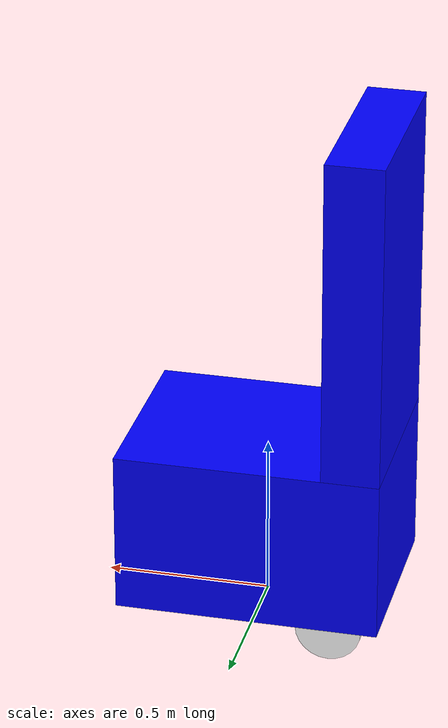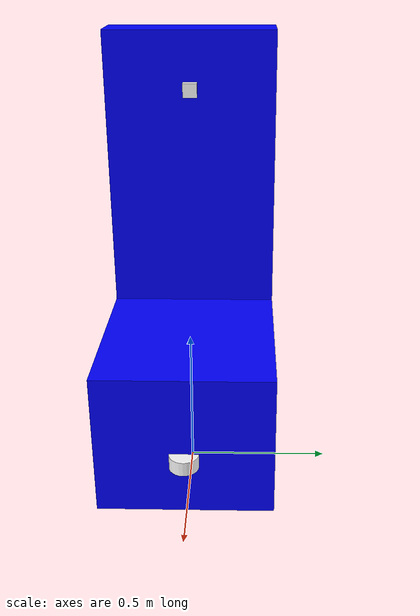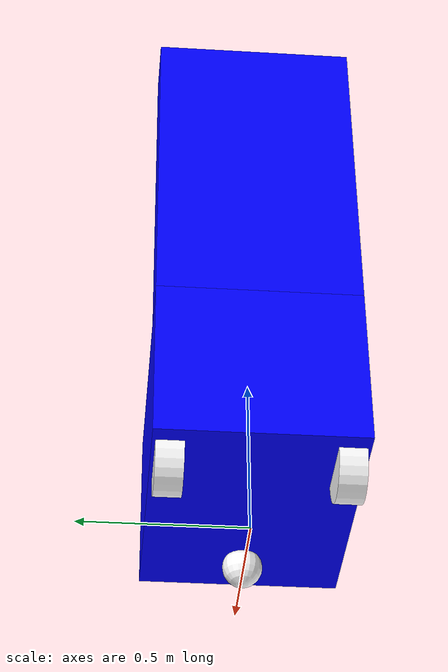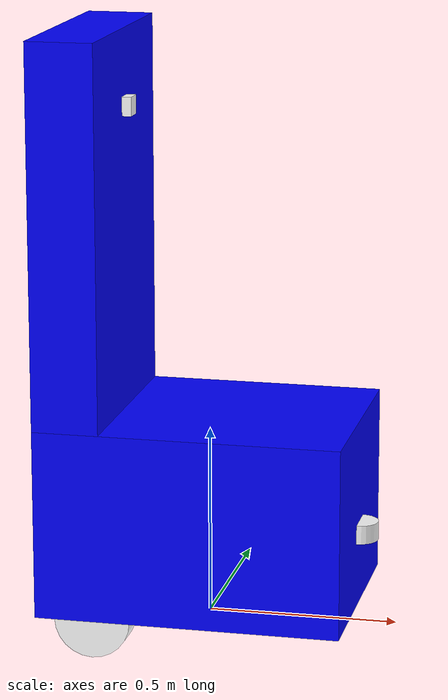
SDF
<?xml version="1.0"?>

<sdf version="1.9">

    <!-- nomeer_robot model -->
    <model name='nomeer_robot' canonical_link='base_link'>

        <static>false</static>
        <self_collide>false</self_collide>

        <!-- links-->
        <!-- base_footprint -->
        <link name="base_footprint" />

        <!-- base_link -->
        <link name="base_link">

            <pose relative_to='__model__'>0 0 0.3 0 0 0</pose>

            <inertial>
                <mass>8.0</mass>
                <inertia>
                    <ixx>0.426667</ixx>
                    <ixy>0</ixy>
                    <ixz>0</ixz>
                    <iyy>0.24</iyy>
                    <iyz>0</iyz>
                    <izz>0.666667</izz>
                </inertia>
            </inertial>

            <visual
                name='visual'>
                <geometry>
                    <box>
                        <size>0.8 0.6 0.5</size>
                    </box>
                </geometry>
                <material> <!-- blue color -->
                    <ambient>0.0 0.0 1.0 1</ambient>
                    <diffuse>0.0 0.0 1.0 1</diffuse>
                    <specular>0.0 0.0 1.0 1</specular>
                </material>
            </visual>

            <collision
                name='collision'>
                <geometry>
                    <box>
                        <size>0.8 0.6 0.5</size>
                    </box>
                </geometry>
            </collision>

        </link>

        <!-- body_link-->
        <link name="body_link">

            <pose relative_to="base_link">-0.3125 0 0.75 0 1.5708 0</pose>

            <inertial>
                <mass>2.0</mass>
                <inertia>
                    <ixx>0.166667</ixx>
                    <ixy>0</ixy>
                    <ixz>0</ixz>
                    <iyy>0.06</iyy>
                    <iyz>0</iyz>
                    <izz>0.226667</izz>
                </inertia>
            </inertial>

            <visual name='visual'>
                <geometry>
                    <box>
                        <size>1.0 0.6 0.175</size>
                    </box>
                </geometry>
                <material> <!-- blue color -->
                    <ambient>0.0 0.0 1.0 1</ambient>
                    <diffuse>0.0 0.0 1.0 1</diffuse>
                    <specular>0.0 0.0 1.0 1</specular>
                </material>
            </visual>

            <collision name='collision'>
                <geometry>
                    <box>
                        <size>1.0 0.6 0.175</size>
                    </box>
                </geometry>
            </collision>

        </link>

        <!-- right_wheel arbitrary frame -->
        <frame name="right_wheel_frame" attached_to='base_link'>
            <pose>-0.25 0.25 -0.25 1.5707 0 0</pose>
        </frame>
        <!-- right_wheel_link-->
        <link name="right_wheel_link">

            <pose relative_to="right_wheel_frame" />

            <inertial>
                <mass>0.4</mass>
                <inertia>
                    <ixx>0.001213</ixx>
                    <ixy>0</ixy>
                    <ixz>0</ixz>
                    <iyy>0.001213</iyy>
                    <iyz>0</iyz>
                    <izz>0.002</izz>
                </inertia>
            </inertial>

            <visual name='visual'>
                <geometry>
                    <cylinder>
                        <radius>0.1</radius>
                        <length>0.08</length>
                    </cylinder>
                </geometry>
                <material> <!-- white color -->
                    <ambient>1.0 1.0 1.0 1.0</ambient>
                    <diffuse>1.0 1.0 1.0 1.0</diffuse>
                    <specular>1.0 1.0 1.0 1.0</specular>
                </material>
            </visual>

            <collision
                name='collision'>
                <geometry>
                    <cylinder>
                        <radius>0.1</radius>
                        <length>0.08</length>
                    </cylinder>
                </geometry>
            </collision>

        </link>

        <!-- left_wheel arbitrary frame -->
        <frame name="left_wheel_frame" attached_to='base_link'>
            <pose>-0.25 -0.25 -0.25 1.5707 0 0</pose>
        </frame>
        <!-- left_wheel_link-->
        <link name="left_wheel_link">

            <pose relative_to="left_wheel_frame" />

            <inertial>
                <mass>0.4</mass>
                <inertia>
                    <ixx>0.001213</ixx>
                    <ixy>0</ixy>
                    <ixz>0</ixz>
                    <iyy>0.001213</iyy>
                    <iyz>0</iyz>
                    <izz>0.002</izz>
                </inertia>
            </inertial>

            <visual name='visual'>
                <geometry>
                    <cylinder>
                        <radius>0.1</radius>
                        <length>0.08</length>
                    </cylinder>
                </geometry>
                <material> <!-- white color -->
                    <ambient>1.0 1.0 1.0 1.0</ambient>
                    <diffuse>1.0 1.0 1.0 1.0</diffuse>
                    <specular>1.0 1.0 1.0 1.0</specular>
                </material>
            </visual>

            <collision name='collision'>
                <geometry>
                    <cylinder>
                        <radius>0.1</radius>
                        <length>0.08</length>
                    </cylinder>
                </geometry>
            </collision>

        </link>

        <!-- caster arbitrary frame -->
        <frame name="caster_frame" attached_to='base_link'>
            <pose>0.25 0 -0.28 0 0 0</pose>
        </frame>
        <!-- caster_link-->
        <link name="caster_link">

            <pose relative_to="caster_frame" />

            <inertial>
                <mass>0.3</mass>
                <inertia>
                    <ixx>0.0012</ixx>
                    <ixy>0</ixy>
                    <ixz>0</ixz>
                    <iyy>0.0012</iyy>
                    <iyz>0</iyz>
                    <izz>0.0012</izz>
                </inertia>
            </inertial>

            <visual name='visual'>
                <geometry>
                    <sphere>
                        <radius>0.06</radius>
                    </sphere>
                </geometry>
                <material> <!-- white color -->
                    <ambient>1.0 1.0 1.0 1.0</ambient>
                    <diffuse>1.0 1.0 1.0 1.0</diffuse>
                    <specular>1.0 1.0 1.0 1.0</specular>
                </material>
            </visual>

            <collision name='collision'>
                <geometry>
                    <sphere>
                        <radius>0.06</radius>
                    </sphere>
                </geometry>
            </collision>

        </link>

        <!-- camera_link-->
        <link name="camera_link">

            <pose relative_to="base_link">-0.225 0 1.05 0 0 0</pose>

            <visual name='visual'>
                <geometry>
                    <box>
                        <size>0.05 0.05 0.05</size>
                    </box>
                </geometry>
                <material> <!-- white color -->
                    <ambient>1.0 1.0 1.0 1.0</ambient>
                    <diffuse>1.0 1.0 1.0 1.0</diffuse>
                    <specular>1.0 1.0 1.0 1.0</specular>
                </material>
            </visual>

            <collision name='collision'>
                <geometry>
                    <box>
                        <size>0.05 0.05 0.05</size>
                    </box>
                </geometry>
            </collision>

            <sensor name="camera" type="camera">
                <pose relative_to='camera_link'>0 0 0 0 0 0</pose>
                <topic>camera</topic>
                <camera>
                    <horizontal_fov>1.047</horizontal_fov>
                    <image>
                        <width>320</width>
                        <height>240</height>
                    </image>
                    <clip>
                        <near>0.1</near>
                        <far>100</far>
                    </clip>
                </camera>
                <always_on>1</always_on>
                <update_rate>10</update_rate>
                <visualize>true</visualize>
            </sensor>

        </link>

        <!-- lidar_link-->
        <link name="lidar_link">

            <pose relative_to="base_link">0.4 0 -0.05 0 0 0</pose>

            <visual name='visual'>
                <geometry>
                    <cylinder>
                        <radius>0.05</radius>
                        <length>0.05</length>
                    </cylinder>
                </geometry>
                <material> <!-- white color -->
                    <ambient>1.0 1.0 1.0 1.0</ambient>
                    <diffuse>1.0 1.0 1.0 1.0</diffuse>
                    <specular>1.0 1.0 1.0 1.0</specular>
                </material>
            </visual>

            <collision name='collision'>
                <geometry>
                    <cylinder>
                        <radius>0.05</radius>
                        <length>0.05</length>
                    </cylinder>
                </geometry>
            </collision>

            <sensor name='gpu_lidar' type='gpu_lidar'>
                <pose relative_to='lidar_link'>0 0 0 0 0 0</pose>
                <topic>lidar</topic>
                <update_rate>10</update_rate>
                <ray>
                    <scan>
                        <horizontal>
                            <samples>400</samples>
                            <resolution>1</resolution>
                            <min_angle>-1.5707</min_angle>
                            <max_angle>1.5707</max_angle>
                        </horizontal>
                        <vertical>
                            <samples>1</samples>
                            <resolution>0.01</resolution>
                            <min_angle>0</min_angle>
                            <max_angle>0</max_angle>
                        </vertical>
                    </scan>
                    <range>
                        <min>0.15</min>
                        <max>25.0</max>
                        <resolution>0.01</resolution>
                    </range>
                </ray>
                <gz_frame_id>lidar_link</gz_frame_id>
                <always_on>1</always_on>
                <visualize>true</visualize>
            </sensor>

        </link>

        <!-- joins -->
        <!-- base_joint -->
        <joint name="base_joint" type="fixed">
            <pose relative_to='base_link' />
            <parent>base_link</parent>
            <child>base_footprint</child>
        </joint>

        <!-- body_joint -->
        <joint name="body_joint" type="fixed">
            <pose relative_to='body_link' />
            <parent>base_link</parent>
            <child>body_link</child>
        </joint>

        <!-- right_wheel_joint -->
        <joint name='right_wheel_joint' type='revolute'>
            <pose relative_to='right_wheel_link' />
            <parent>base_link</parent>
            <child>right_wheel_link</child>
            <axis>
                <xyz expressed_in='__model__'>0 1 0</xyz>
                <limit>
                    <lower>-1.79769e+308</lower>    <!--negative
                    infinity-->
                    <upper>1.79769e+308</upper>     <!--positive
                    infinity-->
                </limit>
            </axis>
        </joint>

        <!-- left_wheel_joint -->
        <joint name='left_wheel_joint' type='revolute'>
            <pose relative_to='left_wheel_link' />
            <parent>base_link</parent>
            <child>left_wheel_link</child>
            <axis>
                <xyz expressed_in='__model__'>0 1 0</xyz>
                <limit>
                    <lower>-1.79769e+308</lower>    <!--negative
                    infinity-->
                    <upper>1.79769e+308</upper>     <!--positive
                    infinity-->
                </limit>
            </axis>
        </joint>

        <!-- caster_joint -->
        <joint name="caster_joint" type='ball'>
            <pose relative_to="caster_link" />
            <parent>base_link</parent>
            <child>caster_link</child>
        </joint>

        <!-- camera_joint -->
        <joint name="camera_joint" type="fixed">
            <pose relative_to='camera_link' />
            <parent>base_link</parent>
            <child>camera_link</child>
        </joint>

        <!-- lidar_joint -->
        <joint name="lidar_joint" type="fixed">
            <pose relative_to='lidar_link' />
            <parent>base_link</parent>
            <child>lidar_link</child>
        </joint>

        <!-- plugins -->
        <!-- diff_drive_plugin -->
        <plugin
            filename="gz-sim-diff-drive-system"
            name="gz::sim::systems::DiffDrive">
            <left_joint>left_wheel_joint</left_joint>
            <right_joint>right_wheel_joint</right_joint>
            <wheel_separation>0.5</wheel_separation>
            <wheel_radius>0.1</wheel_radius>
            <topic>cmd_vel</topic>
            <odom_topic>/odom</odom_topic>
            <frame_id>odom</frame_id>
            <child_frame_id>base_link</child_frame_id>
        </plugin>

        <!-- joint state publisher plugin -->
        <plugin
            filename="gz-sim-joint-state-publisher-system"
            name="gz::sim::systems::JointStatePublisher">
            <joint_name>base_joint</joint_name>
            <joint_name>body_joint</joint_name>
            <joint_name>right_wheel_joint</joint_name>
            <joint_name>left_wheel_joint</joint_name>
            <joint_name>caster_joint</joint_name>
            <joint_name>camera_joint</joint_name>
            <joint_name>lidar_joint</joint_name>
        </plugin>

        <plugin
            filename="gz-sim-odometry-publisher-system"
            name="gz::sim::systems::OdometryPublisher">
            <odom_frame>odom</odom_frame>
            <odom_covariance_topic>odometry_with_covariance</odom_covariance_topic>
            <tf_topic>tf</tf_topic>
            <robot_base_frame>base_footprint</robot_base_frame>
            <odom_topic>odom</odom_topic>
        </plugin>

    </model>

</sdf>
